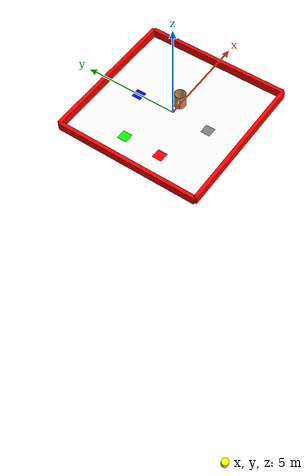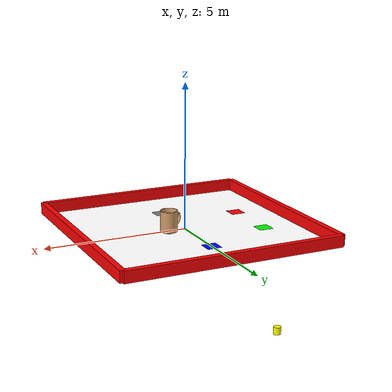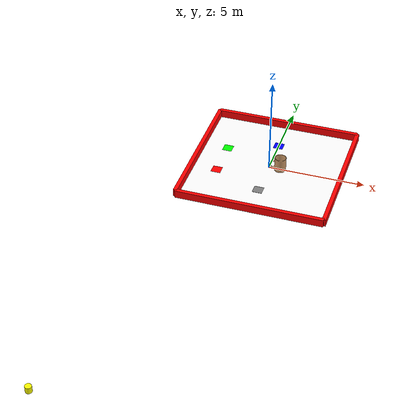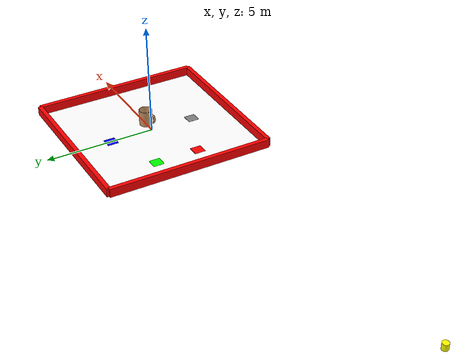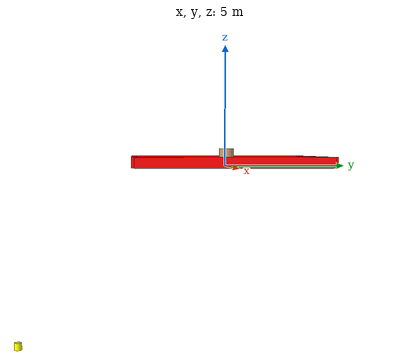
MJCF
<mujoco>
  <compiler inertiafromgeom="true" angle="degree" coordinate="local" />
  <option timestep="0.01" integrator="Euler"/>
  <default>
    <joint limited="false" armature="0" damping="0" />
    <geom conaffinity="1" contype="1" condim="1"  margin="0" friction="1 0.5 0.5" rgba="0.8 0.6 0.4 1" density="100" />
  </default>
  <asset>
    <texture type="skybox" builtin="gradient" width="100" height="100" rgb1="1 1 1" rgb2="0 0 0" />
    <texture name="texgeom" type="cube" builtin="flat" mark="cross" width="127" height="1278" rgb1="0.8 0.6 0.4" rgb2="0.8 0.6 0.4" markrgb="1 1 1" random="0.01" />
    <texture name="texplane" type="2d" builtin="checker" rgb1="0 0 0" rgb2="0.8 0.8 0.8" width="100" height="100" />
    <material name='geom' texture="texgeom" texuniform="true" />
    <material name='MatPlane' texture="marble2d"/>
    <material name='wall_tex' texture="darkwood"/>
    <material name='marble' texture="marble"/>
    <texture type="2d" name="marble" file="marble.png" />
    <texture type="2d" name="marble2d" file="light_wood_v3.png" />
    <texture type="2d" name="darkwood" file="darkwood.png" />
    <mesh name="mug" file="coffee_mug.stl" scale="8 8 8"/>
    <mesh name="gripperr" file="magnet.stl" scale="0.01 0.01 0.01"/>
  </asset>

  <worldbody>
    <light directional="true" cutoff="100" exponent="1" diffuse=".3 .3 .3" specular=".1 .1 .1" pos="0 0 1.3" dir="-0 0 -1.3" />
    <geom name='floor' material="MatPlane" pos='0 0 0' size='3.8 3.8 3' type='plane' conaffinity='1' rgba='1 1 1 1' condim='3' />
    <geom name='left_wall' material="wall_tex" pos='-3.8 0 0.2' size='0.1 3.8 0.2' type='box' conaffinity='1' rgba='1 0 0 1' condim='1' contype='1' />
    <geom name='right_wall' material="wall_tex"  pos='3.8 0 0.2' size='0.1 3.8 0.2' type='box' conaffinity='1' rgba='1 0 0 1' condim='1' contype='1' />
    <geom name='front_wall' material="wall_tex"  pos='0 3.8 0.2' size='3.8 0.1 0.2' type='box' conaffinity='1' rgba='1 0 0 1' condim='1' contype='1' />
    <geom name='back_wall'  material="wall_tex" pos='0 -3.8 0.2' size='3.8 0.1 0.2' type='box' conaffinity='1' rgba='1 0 0 1' condim='1' contype='1' />

    <body name="fist" pos="0 0 0">
      <body name="gripper1" euler="0 0 90" pos="0.6 0 0" >
        <geom name="pointbodyr" type="mesh" euler="180 0 0" mesh="gripperr" size="0.1" pos="0 0 -0.1" rgba="0 0 0 1"/>
      </body>

      <joint name='ballx' type='slide' axis='1 0 0' pos='0 0 0'  limited="true" range="-3 3"/>
      <joint name='bally' type='slide' axis='0 1 0' pos='0 0 0'  limited="true" range="-3 3"/>
    </body>

    <body name="redcube" pos="0 0 0">
      <geom name="rc" type="mesh" mesh="mug" size="0.2 0.2 0.2" pos="0.6 0 0" conaffinity="0" contype="0"/>
      <joint name='rcx' type='slide' axis='1 0 0' pos='0 0 0' limited="true" range="-3 3"/>
      <joint name='rcy' type='slide' axis='0 1 0' pos='0 0 0' limited="true" range="-3 3"/>
    </body>

    <body name="bluecube" pos="0 0 0">
      <geom name="bc" type="mesh" mesh="mug" size="0.2 0.2 0.2" pos="0.6 0 0" rgba="1 1 1 1" conaffinity="0" contype="0"/>
      <joint name='bcx' type='slide' axis='1 0 0' pos='0 0 0' limited="true" range="-3 3"/>
      <joint name='bcy' type='slide' axis='0 1 0' pos='0 0 0' limited="true" range="-3 3"/>
    </body>

    <body name="blacksphere" pos="0 0 0">
      <geom name="bs" type="mesh" mesh="mug" size="0.2 0.2 0.2" pos="0.6 0 0" rgba="0 0 0 1" conaffinity="0" contype="0"/>
      <joint name='bsx' type='slide' axis='1 0 0' pos='0 0 0' limited="true" range="-3 3"/>
      <joint name='bsy' type='slide' axis='0 1 0' pos='0 0 0' limited="true" range="-3 3"/>
    </body>

    <geom name="tgt1" material="marble" type="plane" size="0.2 0.2 0.03" pos="-2.5 -1 0.01" rgba="1 1 1 1" />
    <geom name="tgt1outer" type="box" size="0.25 0.25 0.001" pos="-2.5 -1 0.0" rgba="1 0 0 1"/>

    <geom name="tgt2" material="marble" type="plane" size="0.2 0.2 0.03" pos="-2.5 1 0.01" rgba="1 1 1 1" />
    <geom name="tgt2outer" type="box" size="0.25 0.25 0.001" pos="-2.5 1 0.0" rgba="0 1 0 1"/>

    <geom name="tgt3" material="marble" type="plane" size="0.2 0.2 0.03" pos="0 2 0.01" rgba="1 1 1 1" />
    <geom name="tgt3outer" type="box" size="0.25 0.25 0.001" pos="0 2 0.0" rgba="0 0 1 1"/>

    <geom name="tgt4" material="marble" type="plane" size="0.2 0.2 0.03" pos="0 -2 0.01" rgba="1 1 1 1" />
    <geom name="tgt4outer" type="box" size="0.25 0.25 0.001" pos="0 -2 0.0" rgba="0.5 0.5 0.5 1"/>

    <body name="random" pos="-10 -10 -10">
      <geom name="randombody" type="cylinder" size="0.2 0.2" pos="0 0 0.2" rgba="1 1 0 1" conaffinity="0" contype="0"/>
      <joint name='random_joint' type='slide' axis='0 1 0' pos='0 0 0' />
    </body>

  </worldbody>

  <actuator>
    <motor joint='ballx' ctrlrange="-1 1" ctrllimited="true" />
    <motor joint='bally' ctrlrange="-1 1" ctrllimited="true" />
    <motor joint='random_joint' ctrlrange="-1 1" ctrllimited="true" />
  </actuator>

</mujoco>
